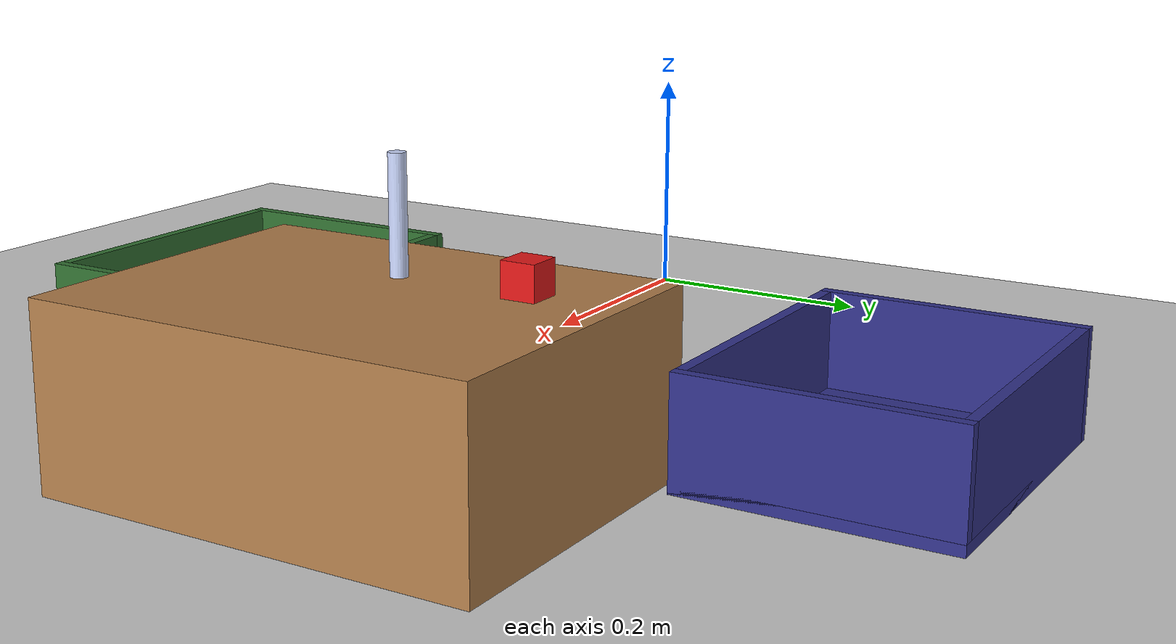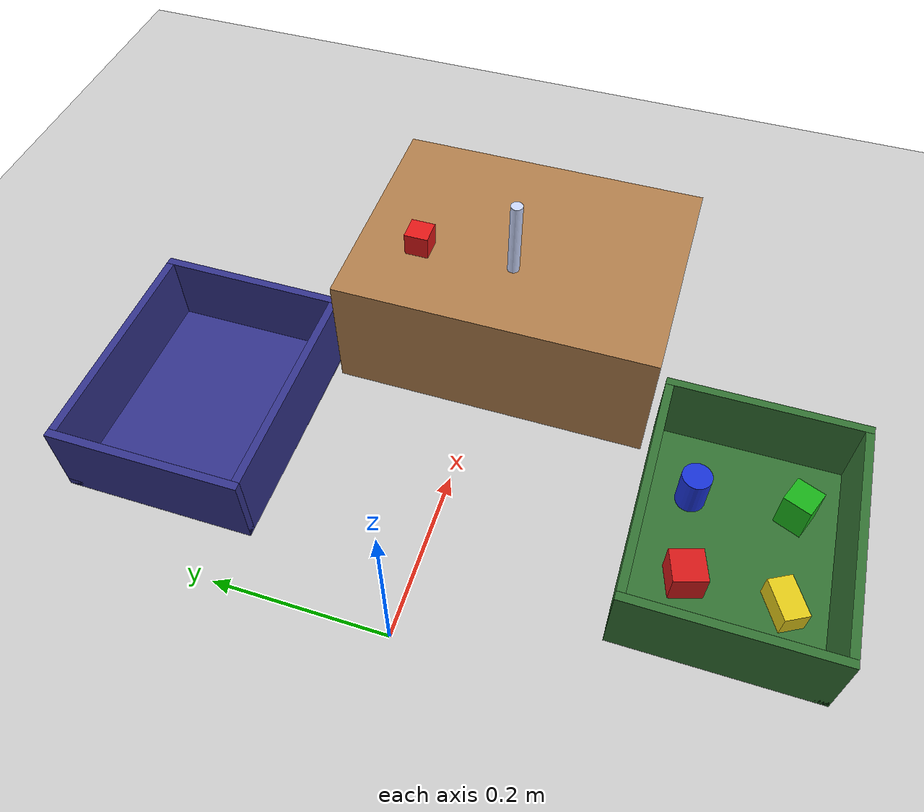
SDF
<?xml version="1.0"?>
<sdf version="1.6">
  <world name="lwa4p_table">
    <light name="sun" type="directional">
      <cast_shadows>true</cast_shadows>
      <pose>0 0 10 0 0 0</pose>
      <diffuse>0.8 0.8 0.8 1</diffuse>
      <specular>0.2 0.2 0.2 1</specular>
      <direction>-0.5 0.1 -0.9</direction>
    </light>
    <!-- floor 6 cm below the robot origin: the pedestal mesh reaches 5 cm
         below z=0 and must not touch the floor (that throws the arm around) -->
    <model name="ground_plane">
      <static>true</static>
      <pose>0 0 -0.06 0 0 0</pose>
      <link name="link">
        <collision name="c">
          <geometry><plane><normal>0 0 1</normal><size>20 20</size></plane></geometry>
          <surface><friction><ode><mu>100</mu><mu2>50</mu2></ode></friction></surface>
        </collision>
        <visual name="v">
          <cast_shadows>false</cast_shadows>
          <geometry><plane><normal>0 0 1</normal><size>20 20</size></plane></geometry>
          <material><script><uri>file://media/materials/scripts/gazebo.material</uri><name>Gazebo/Grey</name></script></material>
        </visual>
      </link>
    </model>

    <physics type="ode">
      <max_step_size>0.001</max_step_size>
      <real_time_update_rate>1000</real_time_update_rate>
      <ode><solver><iters>100</iters></solver></ode>
    </physics>

    <plugin name="gazebo_ros_state" filename="libgazebo_ros_state.so">
      <ros><namespace>/gazebo</namespace></ros>
      <update_rate>10.0</update_rate>
    </plugin>

    <gui>
      <camera name="user_camera">
        <pose>1.6 -1.2 0.9 0 0.3 2.5</pose>
      </camera>
    </gui>

    <model name="stand">
      <static>true</static>
      <!-- top at z = 0.10, standing on the floor at z = -0.06 -->
      <pose>0.5 0 0.02 0 0 0</pose>
      <link name="link">
        <collision name="c"><geometry><box><size>0.3 0.4 0.16</size></box></geometry></collision>
        <visual name="v">
          <geometry><box><size>0.3 0.4 0.16</size></box></geometry>
          <material><script><uri>file://media/materials/scripts/gazebo.material</uri><name>Gazebo/Wood</name></script></material>
        </visual>
      </link>
    </model>

    <model name="test_tube">
      <pose>0.45 0 0.15 0 0 0</pose>
      <link name="link">
        <inertial>
          <mass>0.05</mass>
          <inertia><ixx>4.2e-5</ixx><iyy>4.2e-5</iyy><izz>1.4e-6</izz><ixy>0</ixy><ixz>0</ixz><iyz>0</iyz></inertia>
        </inertial>
        <collision name="c">
          <geometry><cylinder><radius>0.0075</radius><length>0.1</length></cylinder></geometry>
          <surface>
            <friction><ode><mu>2.0</mu><mu2>2.0</mu2></ode></friction>
            <contact><ode><kp>1e6</kp><kd>100</kd><min_depth>0.0</min_depth><max_vel>0</max_vel></ode></contact>
          </surface>
        </collision>
        <visual name="v">
          <geometry><cylinder><radius>0.0075</radius><length>0.1</length></cylinder></geometry>
          <material><ambient>0.9 0.9 1.0 1</ambient><diffuse>0.8 0.85 1.0 1</diffuse></material>
        </visual>
      </link>
    </model>

    <model name="red_cube">
      <pose>0.45 0.12 0.115 0 0 0</pose>
      <link name="link">
        <inertial>
          <mass>0.05</mass>
          <inertia><ixx>7.5e-6</ixx><iyy>7.5e-6</iyy><izz>7.5e-6</izz><ixy>0</ixy><ixz>0</ixz><iyz>0</iyz></inertia>
        </inertial>
        <collision name="c">
          <geometry><box><size>0.03 0.03 0.03</size></box></geometry>
          <surface>
            <friction><ode><mu>2.0</mu><mu2>2.0</mu2></ode></friction>
            <contact><ode><kp>1e6</kp><kd>100</kd><min_depth>0.0</min_depth><max_vel>0</max_vel></ode></contact>
          </surface>
        </collision>
        <visual name="v">
          <geometry><box><size>0.03 0.03 0.03</size></box></geometry>
          <material><ambient>0.8 0.1 0.1 1</ambient><diffuse>0.9 0.1 0.1 1</diffuse></material>
        </visual>
      </link>
    </model>

    <!-- bin for bin picking: outer 30 x 24 x 10 cm, inside floor at z = -0.05 -->
    <model name="bin">
      <static>true</static>
      <pose>0.24 -0.33 -0.06 0 0 0</pose>
      <link name="link">
        <collision name="bottom_c"><pose>0 0 0.005 0 0 0</pose><geometry><box><size>0.3 0.24 0.01</size></box></geometry></collision>
        <visual name="bottom_v"><pose>0 0 0.005 0 0 0</pose><geometry><box><size>0.3 0.24 0.01</size></box></geometry>
          <material><ambient>0.15 0.35 0.15 1</ambient><diffuse>0.2 0.45 0.2 1</diffuse></material></visual>
        <collision name="wall_xn_c"><pose>-0.145 0 0.05 0 0 0</pose><geometry><box><size>0.01 0.24 0.1</size></box></geometry></collision>
        <visual name="wall_xn_v"><pose>-0.145 0 0.05 0 0 0</pose><geometry><box><size>0.01 0.24 0.1</size></box></geometry>
          <material><ambient>0.15 0.35 0.15 1</ambient><diffuse>0.2 0.45 0.2 1</diffuse></material></visual>
        <collision name="wall_xp_c"><pose>0.145 0 0.05 0 0 0</pose><geometry><box><size>0.01 0.24 0.1</size></box></geometry></collision>
        <visual name="wall_xp_v"><pose>0.145 0 0.05 0 0 0</pose><geometry><box><size>0.01 0.24 0.1</size></box></geometry>
          <material><ambient>0.15 0.35 0.15 1</ambient><diffuse>0.2 0.45 0.2 1</diffuse></material></visual>
        <collision name="wall_yn_c"><pose>0 -0.115 0.05 0 0 0</pose><geometry><box><size>0.28 0.01 0.1</size></box></geometry></collision>
        <visual name="wall_yn_v"><pose>0 -0.115 0.05 0 0 0</pose><geometry><box><size>0.28 0.01 0.1</size></box></geometry>
          <material><ambient>0.15 0.35 0.15 1</ambient><diffuse>0.2 0.45 0.2 1</diffuse></material></visual>
        <collision name="wall_yp_c"><pose>0 0.115 0.05 0 0 0</pose><geometry><box><size>0.28 0.01 0.1</size></box></geometry></collision>
        <visual name="wall_yp_v"><pose>0 0.115 0.05 0 0 0</pose><geometry><box><size>0.28 0.01 0.1</size></box></geometry>
          <material><ambient>0.15 0.35 0.15 1</ambient><diffuse>0.2 0.45 0.2 1</diffuse></material></visual>
      </link>
    </model>
    <!-- output bin (same size) on the other side -->
    <model name="out_bin">
      <static>true</static>
      <pose>0.24 0.33 -0.06 0 0 0</pose>
      <link name="link">
        <collision name="bottom_c"><pose>0 0 0.005 0 0 0</pose><geometry><box><size>0.3 0.24 0.01</size></box></geometry></collision>
        <visual name="bottom_v"><pose>0 0 0.005 0 0 0</pose><geometry><box><size>0.3 0.24 0.01</size></box></geometry>
          <material><ambient>0.15 0.15 0.4 1</ambient><diffuse>0.2 0.2 0.55 1</diffuse></material></visual>
        <collision name="wall_xn_c"><pose>-0.145 0 0.05 0 0 0</pose><geometry><box><size>0.01 0.24 0.1</size></box></geometry></collision>
        <visual name="wall_xn_v"><pose>-0.145 0 0.05 0 0 0</pose><geometry><box><size>0.01 0.24 0.1</size></box></geometry>
          <material><ambient>0.15 0.15 0.4 1</ambient><diffuse>0.2 0.2 0.55 1</diffuse></material></visual>
        <collision name="wall_xp_c"><pose>0.145 0 0.05 0 0 0</pose><geometry><box><size>0.01 0.24 0.1</size></box></geometry></collision>
        <visual name="wall_xp_v"><pose>0.145 0 0.05 0 0 0</pose><geometry><box><size>0.01 0.24 0.1</size></box></geometry>
          <material><ambient>0.15 0.15 0.4 1</ambient><diffuse>0.2 0.2 0.55 1</diffuse></material></visual>
        <collision name="wall_yn_c"><pose>0 -0.115 0.05 0 0 0</pose><geometry><box><size>0.28 0.01 0.1</size></box></geometry></collision>
        <visual name="wall_yn_v"><pose>0 -0.115 0.05 0 0 0</pose><geometry><box><size>0.28 0.01 0.1</size></box></geometry>
          <material><ambient>0.15 0.15 0.4 1</ambient><diffuse>0.2 0.2 0.55 1</diffuse></material></visual>
        <collision name="wall_yp_c"><pose>0 0.115 0.05 0 0 0</pose><geometry><box><size>0.28 0.01 0.1</size></box></geometry></collision>
        <visual name="wall_yp_v"><pose>0 0.115 0.05 0 0 0</pose><geometry><box><size>0.28 0.01 0.1</size></box></geometry>
          <material><ambient>0.15 0.15 0.4 1</ambient><diffuse>0.2 0.2 0.55 1</diffuse></material></visual>
      </link>
    </model>
    <model name="red_box">
      <pose>0.18 -0.28 -0.03 0 0 0.3</pose>
      <link name="link">
        <inertial>
          <mass>0.05</mass>
          <inertia><ixx>1.33e-05</ixx><iyy>1.33e-05</iyy><izz>1.33e-05</izz><ixy>0</ixy><ixz>0</ixz><iyz>0</iyz></inertia>
        </inertial>
        <collision name="c">
          <geometry><box><size>0.04 0.04 0.04</size></box></geometry>
          <surface>
            <friction><ode><mu>3.0</mu><mu2>3.0</mu2></ode></friction>
            <contact><ode><kp>1e6</kp><kd>100</kd><min_depth>0.0</min_depth><max_vel>0</max_vel></ode></contact>
          </surface>
        </collision>
        <visual name="v">
          <geometry><box><size>0.04 0.04 0.04</size></box></geometry>
          <material><ambient>0.85 0.1 0.1 1</ambient><diffuse>0.85 0.1 0.1 1</diffuse></material>
        </visual>
      </link>
    </model>
    <model name="green_box">
      <pose>0.3 -0.39 -0.025 0 0 -0.4</pose>
      <link name="link">
        <inertial>
          <mass>0.05</mass>
          <inertia><ixx>1.55e-05</ixx><iyy>1.55e-05</iyy><izz>1.02e-05</izz><ixy>0</ixy><ixz>0</ixz><iyz>0</iyz></inertia>
        </inertial>
        <collision name="c">
          <geometry><box><size>0.035 0.035 0.05</size></box></geometry>
          <surface>
            <friction><ode><mu>3.0</mu><mu2>3.0</mu2></ode></friction>
            <contact><ode><kp>1e6</kp><kd>100</kd><min_depth>0.0</min_depth><max_vel>0</max_vel></ode></contact>
          </surface>
        </collision>
        <visual name="v">
          <geometry><box><size>0.035 0.035 0.05</size></box></geometry>
          <material><ambient>0.1 0.7 0.1 1</ambient><diffuse>0.1 0.7 0.1 1</diffuse></material>
        </visual>
      </link>
    </model>
    <model name="blue_cylinder">
      <pose>0.29 -0.27 -0.025 0 0 0</pose>
      <link name="link">
        <inertial>
          <mass>0.05</mass>
          <inertia><ixx>1.45e-05</ixx><iyy>1.45e-05</iyy><izz>8.1e-06</izz><ixy>0</ixy><ixz>0</ixz><iyz>0</iyz></inertia>
        </inertial>
        <collision name="c">
          <geometry><cylinder><radius>0.018</radius><length>0.05</length></cylinder></geometry>
          <surface>
            <friction><ode><mu>3.0</mu><mu2>3.0</mu2></ode></friction>
            <contact><ode><kp>1e6</kp><kd>100</kd><min_depth>0.0</min_depth><max_vel>0</max_vel></ode></contact>
          </surface>
        </collision>
        <visual name="v">
          <geometry><cylinder><radius>0.018</radius><length>0.05</length></cylinder></geometry>
          <material><ambient>0.1 0.2 0.85 1</ambient><diffuse>0.1 0.2 0.85 1</diffuse></material>
        </visual>
      </link>
    </model>
    <model name="yellow_box">
      <pose>0.18 -0.39 -0.035 0 0 0.5</pose>
      <link name="link">
        <inertial>
          <mass>0.05</mass>
          <inertia><ixx>7.5e-06</ixx><iyy>1.42e-05</iyy><izz>1.42e-05</izz><ixy>0</ixy><ixz>0</ixz><iyz>0</iyz></inertia>
        </inertial>
        <collision name="c">
          <geometry><box><size>0.05 0.03 0.03</size></box></geometry>
          <surface>
            <friction><ode><mu>3.0</mu><mu2>3.0</mu2></ode></friction>
            <contact><ode><kp>1e6</kp><kd>100</kd><min_depth>0.0</min_depth><max_vel>0</max_vel></ode></contact>
          </surface>
        </collision>
        <visual name="v">
          <geometry><box><size>0.05 0.03 0.03</size></box></geometry>
          <material><ambient>0.9 0.8 0.1 1</ambient><diffuse>0.9 0.8 0.1 1</diffuse></material>
        </visual>
      </link>
    </model>
  </world>
</sdf>
